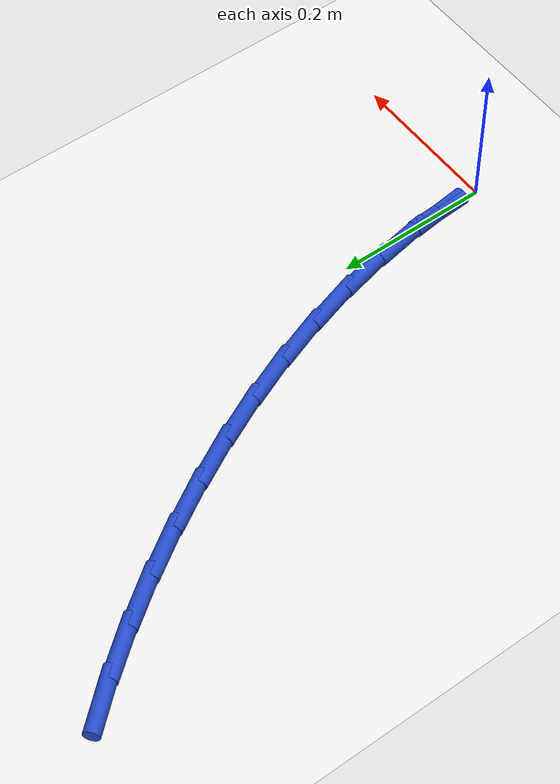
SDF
<sdf version="1.6">
 <world name="default">
  <model name="ground_plane">
   <static>1</static>
   <link name="link">
    <collision name="collision">
     <geometry><plane><normal>0 0 1</normal><size>100 100</size></plane></geometry>
     <surface><friction><ode><mu>100</mu><mu2>50</mu2></ode></friction></surface>
    </collision>
    <visual name="visual">
     <cast_shadows>0</cast_shadows>
     <geometry><plane><normal>0 0 1</normal><size>100 100</size></plane></geometry>
     <material>
      <script><uri>file://media/materials/scripts/gazebo.material</uri><name>Gazebo/WhiteGlow</name></script>
     </material>
    </visual>
   </link>
  </model>
  <model name="line">
   <link name="link_1">
    <pose>-0.0030425153619807205 0.0625437878814335 0.01 0 1.57 -1.4558813055623203</pose>
    <collision name="collision">
     <geometry><cylinder><radius>0.01</radius><length>0.08</length></cylinder></geometry>
    </collision>
    <visual name="visual">
     <material>
      <script><name>Gazebo/Blue</name><uri>file://media/materials/scripts/gazebo.material</uri></script>
     </material>
     <geometry><cylinder><radius>0.01</radius><length>0.08</length></cylinder></geometry>
    </visual>
   </link>
   <link name="link_2">
    <pose>-0.010212585581806585 0.12466343907454326 0.01 0 1.57 -1.3928253921987204</pose>
    <collision name="collision">
     <geometry><cylinder><radius>0.01</radius><length>0.08</length></cylinder></geometry>
    </collision>
    <visual name="visual">
     <material>
      <script><name>Gazebo/Blue</name><uri>file://media/materials/scripts/gazebo.material</uri></script>
     </material>
     <geometry><cylinder><radius>0.01</radius><length>0.08</length></cylinder></geometry>
    </visual>
   </link>
   <link name="link_3">
    <pose>-0.02129032008949815 0.18624950299505996 0.01 0 1.57 -1.3330930459826122</pose>
    <collision name="collision">
     <geometry><cylinder><radius>0.01</radius><length>0.08</length></cylinder></geometry>
    </collision>
    <visual name="visual">
     <material>
      <script><name>Gazebo/Blue</name><uri>file://media/materials/scripts/gazebo.material</uri></script>
     </material>
     <geometry><cylinder><radius>0.01</radius><length>0.08</length></cylinder></geometry>
    </visual>
   </link>
   <link name="link_4">
    <pose>-0.03605582831507596 0.24719252905871456 0.01 0 1.57 -1.276655582059959</pose>
    <collision name="collision">
     <geometry><cylinder><radius>0.01</radius><length>0.08</length></cylinder></geometry>
    </collision>
    <visual name="visual">
     <material>
      <script><name>Gazebo/Blue</name><uri>file://media/materials/scripts/gazebo.material</uri></script>
     </material>
     <geometry><cylinder><radius>0.01</radius><length>0.08</length></cylinder></geometry>
    </visual>
   </link>
   <link name="link_5">
    <pose>-0.05428921968856052 0.30738306668123755 0.01 0 1.57 -1.2234053027786418</pose>
    <collision name="collision">
     <geometry><cylinder><radius>0.01</radius><length>0.08</length></cylinder></geometry>
    </collision>
    <visual name="visual">
     <material>
      <script><name>Gazebo/Blue</name><uri>file://media/materials/scripts/gazebo.material</uri></script>
     </material>
     <geometry><cylinder><radius>0.01</radius><length>0.08</length></cylinder></geometry>
    </visual>
   </link>
   <link name="link_6">
    <pose>-0.07577060363997234 0.3667116652783596 0.01 0 1.57 -1.1731762275663429</pose>
    <collision name="collision">
     <geometry><cylinder><radius>0.01</radius><length>0.08</length></cylinder></geometry>
    </collision>
    <visual name="visual">
     <material>
      <script><name>Gazebo/Blue</name><uri>file://media/materials/scripts/gazebo.material</uri></script>
     </material>
     <geometry><cylinder><radius>0.01</radius><length>0.08</length></cylinder></geometry>
    </visual>
   </link>
   <link name="link_7">
    <pose>-0.10028008959933202 0.42506887426581164 0.01 0 1.57 -1.1257619616395538</pose>
    <collision name="collision">
     <geometry><cylinder><radius>0.01</radius><length>0.08</length></cylinder></geometry>
    </collision>
    <visual name="visual">
     <material>
      <script><name>Gazebo/Blue</name><uri>file://media/materials/scripts/gazebo.material</uri></script>
     </material>
     <geometry><cylinder><radius>0.01</radius><length>0.08</length></cylinder></geometry>
    </visual>
   </link>
   <link name="link_8">
    <pose>-0.12759778699666002 0.48234524305932436 0.01 0 1.57 -1.0809300200357108</pose>
    <collision name="collision">
     <geometry><cylinder><radius>0.01</radius><length>0.08</length></cylinder></geometry>
    </collision>
    <visual name="visual">
     <material>
      <script><name>Gazebo/Blue</name><uri>file://media/materials/scripts/gazebo.material</uri></script>
     </material>
     <geometry><cylinder><radius>0.01</radius><length>0.08</length></cylinder></geometry>
    </visual>
   </link>
   <link name="link_9">
    <pose>-0.1575038052619769 0.5384313210746284 0.01 0 1.57 -1.0380089437018922</pose>
    <collision name="collision">
     <geometry><cylinder><radius>0.01</radius><length>0.08</length></cylinder></geometry>
    </collision>
    <visual name="visual">
     <material>
      <script><name>Gazebo/Blue</name><uri>file://media/materials/scripts/gazebo.material</uri></script>
     </material>
     <geometry><cylinder><radius>0.01</radius><length>0.08</length></cylinder></geometry>
    </visual>
   </link>
   <link name="link_10">
    <pose>-0.18980517229316374 0.5932102779575534 0.01 0 1.57 -0.9948697205492939</pose>
    <collision name="collision">
     <geometry><cylinder><radius>0.01</radius><length>0.08</length></cylinder></geometry>
    </collision>
    <visual name="visual">
     <material>
      <script><name>Gazebo/Blue</name><uri>file://media/materials/scripts/gazebo.material</uri></script>
     </material>
     <geometry><cylinder><radius>0.01</radius><length>0.08</length></cylinder></geometry>
    </visual>
   </link>
   <link name="link_11">
    <pose>-0.2244302810792574 0.6465320107898499 0.01 0 1.57 -0.9508124283160336</pose>
    <collision name="collision">
     <geometry><cylinder><radius>0.01</radius><length>0.08</length></cylinder></geometry>
    </collision>
    <visual name="visual">
     <material>
      <script><name>Gazebo/Blue</name><uri>file://media/materials/scripts/gazebo.material</uri></script>
     </material>
     <geometry><cylinder><radius>0.01</radius><length>0.08</length></cylinder></geometry>
    </visual>
   </link>
   <link name="link_12">
    <pose>-0.2613417130149433 0.6982370438104949 0.01 0 1.57 -0.9056880524026567</pose>
    <collision name="collision">
     <geometry><cylinder><radius>0.01</radius><length>0.08</length></cylinder></geometry>
    </collision>
    <visual name="visual">
     <material>
      <script><name>Gazebo/Blue</name><uri>file://media/materials/scripts/gazebo.material</uri></script>
     </material>
     <geometry><cylinder><radius>0.01</radius><length>0.08</length></cylinder></geometry>
    </visual>
   </link>
   <link name="link_13">
    <pose>-0.30050205142123204 0.7481659007303584 0.01 0 1.57 -0.8593566130895522</pose>
    <collision name="collision">
     <geometry><cylinder><radius>0.01</radius><length>0.08</length></cylinder></geometry>
    </collision>
    <visual name="visual">
     <material>
      <script><name>Gazebo/Blue</name><uri>file://media/materials/scripts/gazebo.material</uri></script>
     </material>
     <geometry><cylinder><radius>0.01</radius><length>0.08</length></cylinder></geometry>
    </visual>
   </link>
   <link name="link_111">
    <pose>-0.0030936523807702752 0.0625089769406285 0.01 0 1.57 -1.521345345797145</pose>
    <collision name="collision">
     <geometry><cylinder><radius>0.01</radius><length>0.08</length></cylinder></geometry>
    </collision>
    <visual name="visual">
     <material>
      <script><name>Gazebo/Blue</name><uri>file://media/materials/scripts/gazebo.material</uri></script>
     </material>
     <geometry><cylinder><radius>0.01</radius><length>0.08</length></cylinder></geometry>
    </visual>
   </link>
  </model>
 </world>
</sdf>
